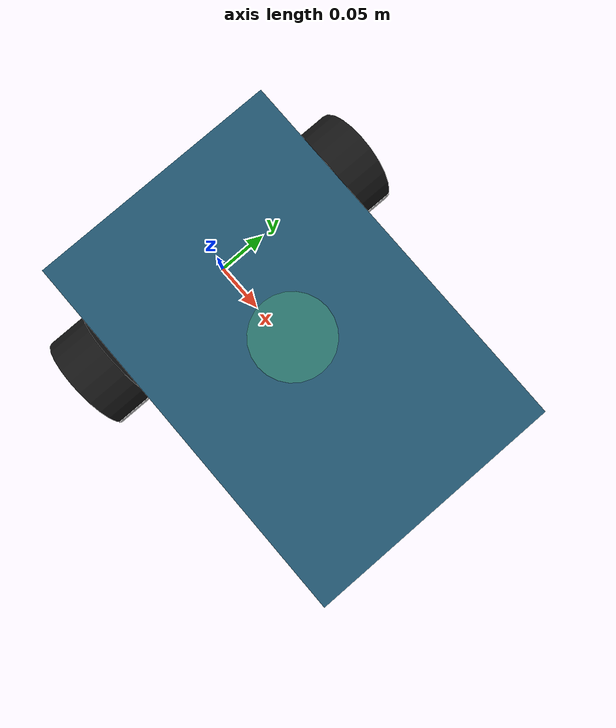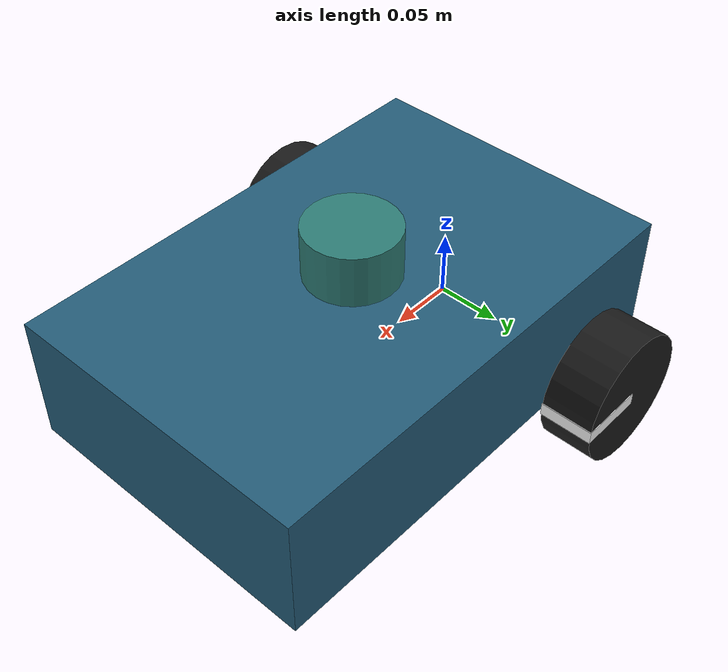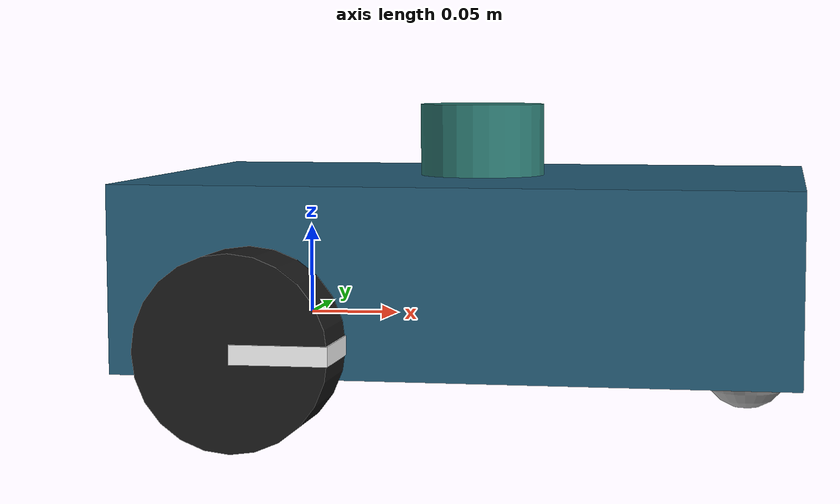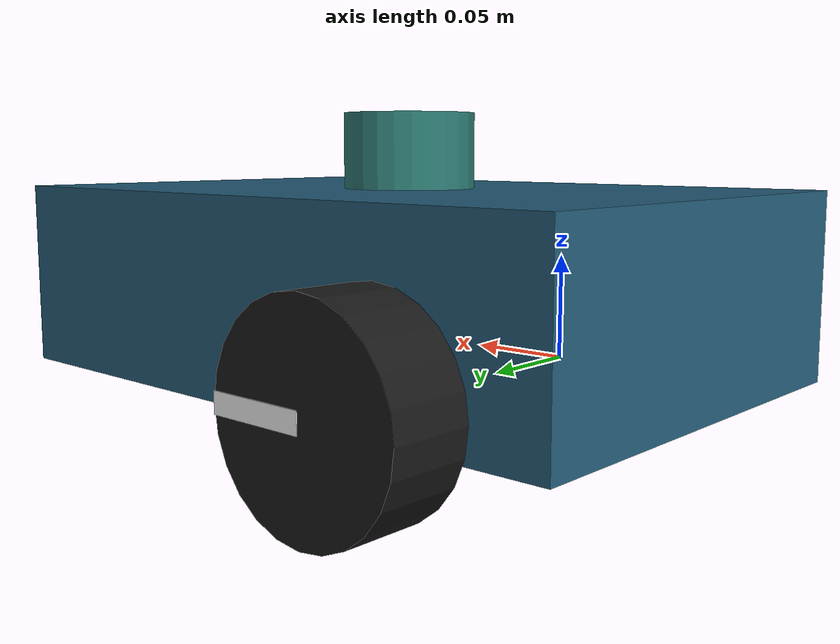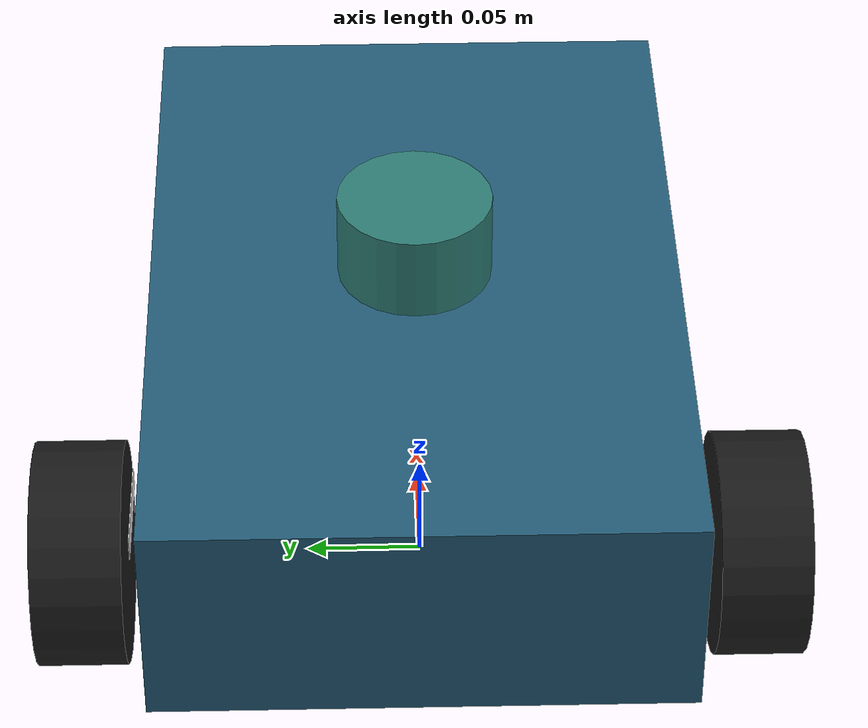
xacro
<?xml version="1.0"?>
<robot name="a2_bot" xmlns:xacro="http://www.ros.org/wiki/xacro">

  <xacro:include filename="properties.xacro"/>
  <xacro:include filename="inertia_macros.xacro"/>

  <!-- ===== Colours (used by RViz; converted to Gazebo materials too) ===== -->
  <material name="chassis_blue"><color rgba="0.14 0.36 0.47 1.0"/></material>
  <material name="wheel_black"><color rgba="0.10 0.10 0.10 1.0"/></material>
  <material name="caster_grey"><color rgba="0.60 0.60 0.60 1.0"/></material>
  <material name="lidar_teal"><color rgba="0.18 0.49 0.46 1.0"/></material>
  <material name="marker_white"><color rgba="0.95 0.95 0.95 1.0"/></material>

  <link name="base_link">
    <visual>
      <origin xyz="${chassis_x} 0 ${chassis_z}" rpy="0 0 0"/>
      <geometry>
        <box size="${chassis_length} ${chassis_width} ${chassis_height}"/>
      </geometry>
      <material name="chassis_blue"/>
    </visual>
    <collision>
      <origin xyz="${chassis_x} 0 ${chassis_z}" rpy="0 0 0"/>
      <geometry>
        <box size="${chassis_length} ${chassis_width} ${chassis_height}"/>
      </geometry>
    </collision>
    <xacro:box_inertia m="${chassis_mass}"
                       x="${chassis_length}" y="${chassis_width}" z="${chassis_height}"
                       xyz="${chassis_x} 0 ${chassis_z}"/>
  </link>

  <xacro:macro name="wheel" params="side y radius">
    <link name="${side}_wheel_link">
      <visual>
        <origin xyz="0 0 0" rpy="0 0 0"/>
        <geometry>
          <cylinder radius="${radius}" length="${wheel_width}"/>
        </geometry>
        <material name="wheel_black"/>
      </visual>
      <!-- A white stripe on the outer face so wheel rotation is visible. -->
      <visual>
        <origin xyz="${radius / 2.0} 0 0" rpy="0 0 0"/>
        <geometry>
          <box size="${radius} ${radius / 5.0} ${wheel_width * 1.02}"/>
        </geometry>
        <material name="marker_white"/>
      </visual>
      <collision>
        <origin xyz="0 0 0" rpy="0 0 0"/>
        <geometry>
          <sphere radius="${radius}"/>
        </geometry>
      </collision>
      <xacro:cylinder_inertia m="${wheel_mass}" r="${radius}" h="${wheel_width}"/>
    </link>

    <joint name="${side}_wheel_joint" type="continuous">
      <parent link="base_link"/>
      <child link="${side}_wheel_link"/>
      <origin xyz="0 ${y} ${radius - r_mean}" rpy="${-pi / 2.0} 0 0"/>
      <axis xyz="0 0 1"/>
    </joint>

    <gazebo reference="${side}_wheel_link">
      <mu1>1.0</mu1>
      <mu2>1.0</mu2>
    </gazebo>
  </xacro:macro>

  <xacro:wheel side="left"  y="${ b / 2.0}" radius="${r_left}"/>
  <xacro:wheel side="right" y="${-b / 2.0}" radius="${r_right}"/>

  <link name="caster_link">
    <visual>
      <geometry><sphere radius="${caster_radius}"/></geometry>
      <material name="caster_grey"/>
    </visual>
    <collision>
      <geometry><sphere radius="${caster_radius}"/></geometry>
    </collision>
    <xacro:sphere_inertia m="${caster_mass}" r="${caster_radius}"/>
  </link>

  <joint name="caster_joint" type="fixed">
    <parent link="base_link"/>
    <child link="caster_link"/>
    <origin xyz="${caster_x} 0 ${caster_z}" rpy="0 0 0"/>
  </joint>

  <link name="lidar_link">
    <visual>
      <geometry><cylinder radius="${lidar_radius}" length="${lidar_length}"/></geometry>
      <material name="lidar_teal"/>
    </visual>
    <collision>
      <geometry><cylinder radius="${lidar_radius}" length="${lidar_length}"/></geometry>
    </collision>
    <xacro:cylinder_inertia m="${lidar_mass}" r="${lidar_radius}" h="${lidar_length}"/>
  </link>

  <joint name="lidar_joint" type="fixed">
    <parent link="base_link"/>
    <child link="lidar_link"/>
    <origin xyz="${lidar_x} 0 ${lidar_z}" rpy="0 0 0"/>
  </joint>

  <xacro:include filename="a2_bot.gazebo.xacro"/>

</robot>

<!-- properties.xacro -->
<robot xmlns:xacro="http://www.ros.org/wiki/xacro">

  <!-- ===== Per-pair values (set by the launch file) ===== -->
  <xacro:arg name="wheel_radius_left"  default="0.050"/>  <!-- (per pair) -->
  <xacro:arg name="wheel_radius_right" default="0.050"/>  <!-- (per pair) -->
  <xacro:arg name="wheel_separation"   default="0.300"/>  <!-- (per pair) track width b -->
  <xacro:arg name="wheel_width"        default="0.040"/>

  <!-- Scale applied ONLY to the diff-drive plugin's wheel_separation.
       1.0 = plugin agrees with the physical robot. Used in the
       extra-credit problem "A wrong track width". -->
  <xacro:arg name="plugin_separation_scale" default="1.0"/>

  <!-- Standard deviation (m) of the Gaussian noise on every LiDAR range.
       0 = noise-free ranges. -->
  <xacro:arg name="lidar_noise" default="0.01"/>

  <!-- ===== Wheels ===== -->
  <xacro:property name="r_left"      value="$(arg wheel_radius_left)"/>
  <xacro:property name="r_right"     value="$(arg wheel_radius_right)"/>
  <xacro:property name="r_mean"      value="${(r_left + r_right) / 2.0}"/>
  <xacro:property name="b"           value="$(arg wheel_separation)"/>
  <xacro:property name="wheel_width" value="$(arg wheel_width)"/>
  <xacro:property name="wheel_mass"  value="0.25"/>

  <!-- ===== Chassis (a box carried by base_link) ===== -->
  <xacro:property name="chassis_length"    value="0.36"/>
  <xacro:property name="chassis_width"     value="${b - wheel_width - 0.02}"/>
  <xacro:property name="chassis_height"    value="0.10"/>
  <xacro:property name="chassis_clearance" value="0.03"/>  <!-- ground to underside -->
  <xacro:property name="chassis_x"         value="0.10"/>  <!-- box centre ahead of the axle -->
  <xacro:property name="chassis_mass"      value="2.0"/>

  <!-- ===== Caster (frictionless sphere at the front) ===== -->
  <xacro:property name="caster_radius" value="0.025"/>
  <xacro:property name="caster_x"      value="0.25"/>
  <xacro:property name="caster_mass"   value="0.05"/>

  <!-- ===== LiDAR ===== -->
  <xacro:property name="lidar_radius" value="0.035"/>
  <xacro:property name="lidar_length" value="0.04"/>
  <xacro:property name="lidar_x"      value="${chassis_x}"/>
  <xacro:property name="lidar_mass"   value="0.10"/>
  <xacro:property name="lidar_noise"  value="$(arg lidar_noise)"/>

  <xacro:property name="plugin_wheel_radius"     value="${r_mean}"/>
  <xacro:property name="plugin_wheel_separation"
                  value="${b * $(arg plugin_separation_scale)}"/>

  <!-- ===== Heights, all relative to base_link =====
       base_link sits at the midpoint of the wheel axle, r_mean above the
       ground, x forward, y left, z up. -->
  <xacro:property name="chassis_z" value="${chassis_clearance + chassis_height / 2.0 - r_mean}"/>
  <xacro:property name="caster_z"  value="${caster_radius - r_mean}"/>
  <xacro:property name="lidar_z"
                  value="${chassis_clearance + chassis_height + lidar_length / 2.0 - r_mean}"/>

</robot>

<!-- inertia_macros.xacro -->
<robot xmlns:xacro="http://www.ros.org/wiki/xacro">

  <!-- Solid box, side lengths x, y, z. -->
  <xacro:macro name="box_inertia" params="m x y z xyz:='0 0 0' rpy:='0 0 0'">
    <inertial>
      <origin xyz="${xyz}" rpy="${rpy}"/>
      <mass value="${m}"/>
      <inertia ixx="${m * (y*y + z*z) / 12.0}" ixy="0" ixz="0"
               iyy="${m * (x*x + z*z) / 12.0}" iyz="0"
               izz="${m * (x*x + y*y) / 12.0}"/>
    </inertial>
  </xacro:macro>

  <!-- Solid cylinder, radius r, length h, axis along frame z. -->
  <xacro:macro name="cylinder_inertia" params="m r h xyz:='0 0 0' rpy:='0 0 0'">
    <inertial>
      <origin xyz="${xyz}" rpy="${rpy}"/>
      <mass value="${m}"/>
      <inertia ixx="${m * (3*r*r + h*h) / 12.0}" ixy="0" ixz="0"
               iyy="${m * (3*r*r + h*h) / 12.0}" iyz="0"
               izz="${m * r*r / 2.0}"/>
    </inertial>
  </xacro:macro>

  <!-- Solid sphere, radius r. -->
  <xacro:macro name="sphere_inertia" params="m r xyz:='0 0 0'">
    <inertial>
      <origin xyz="${xyz}" rpy="0 0 0"/>
      <mass value="${m}"/>
      <inertia ixx="${2.0 * m * r*r / 5.0}" ixy="0" ixz="0"
               iyy="${2.0 * m * r*r / 5.0}" iyz="0"
               izz="${2.0 * m * r*r / 5.0}"/>
    </inertial>
  </xacro:macro>

</robot>
